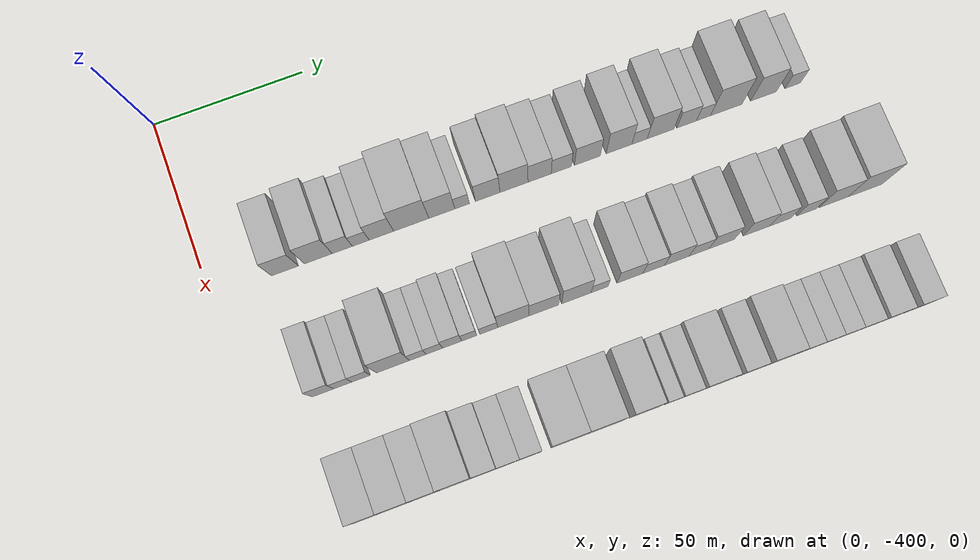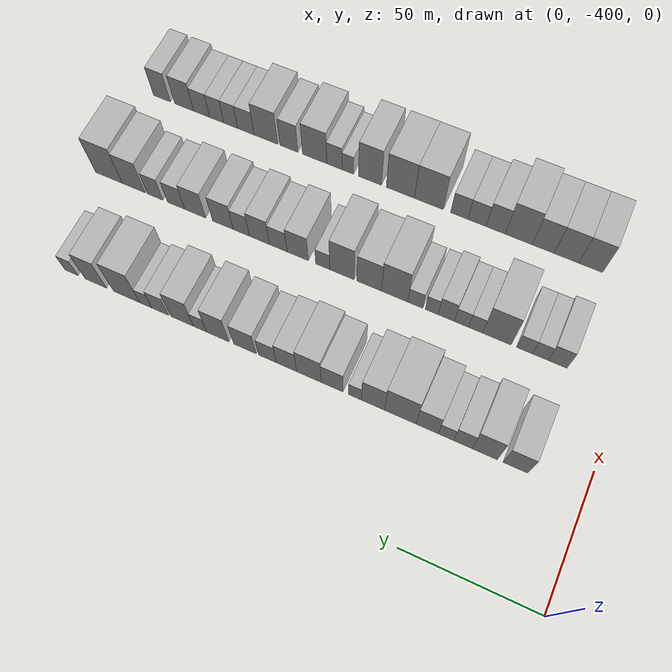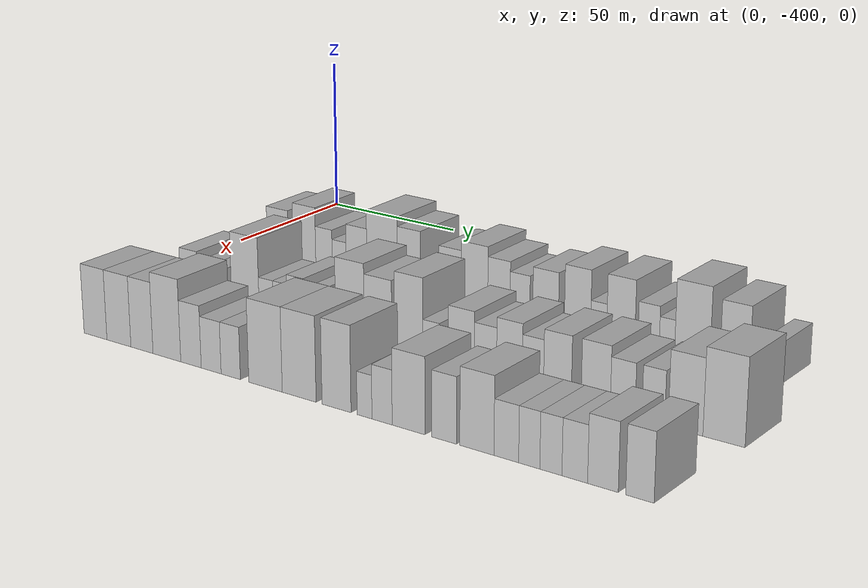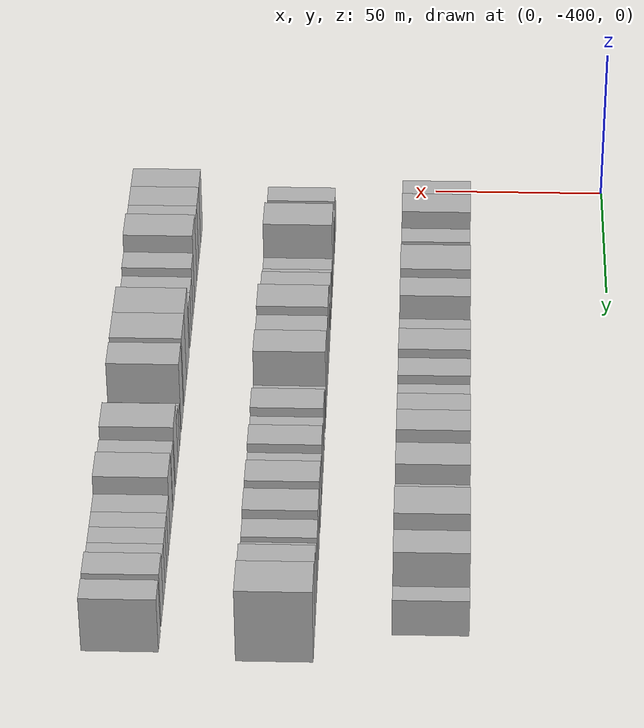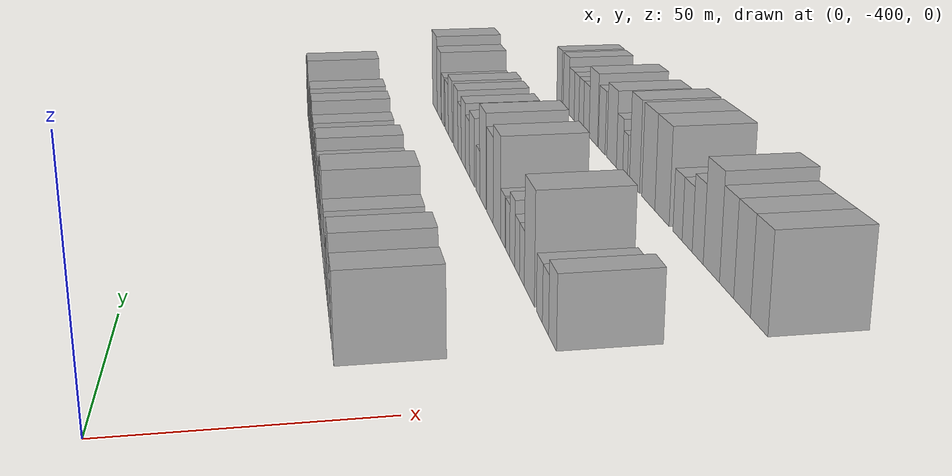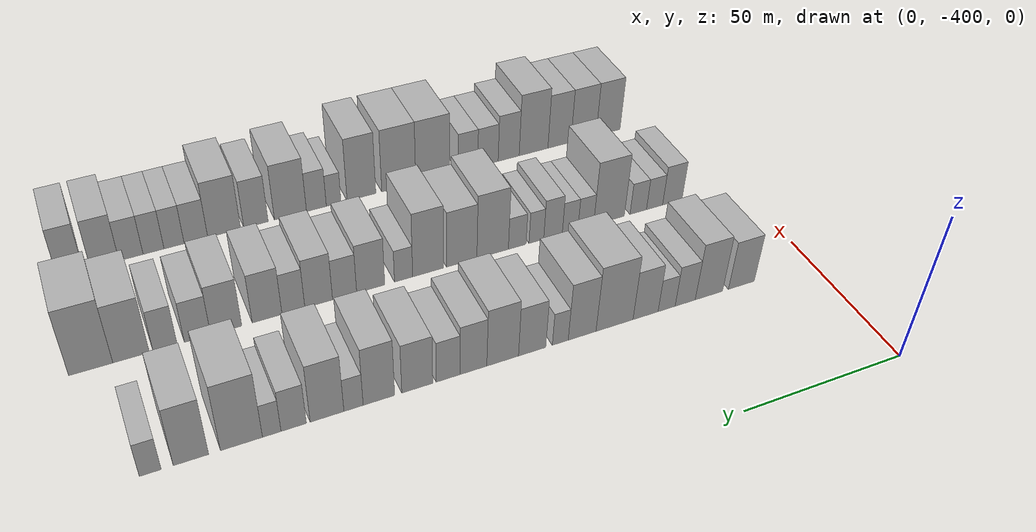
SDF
<sdf version="1.6">
 <world name="default">
  <model name="building_1">
   <static>1</static>
   <pose>50.0000 -375.6060 0 0.000000 0.000000 0.000000</pose>
   <link name="link">
    <pose>0 0 9.00 0 0 0</pose>
    <collision name="collision"><geometry><box><size>20.0000 8.7881 18.0000</size></box></geometry></collision>
    <visual name="visual">
     <cast_shadows>0</cast_shadows>
     <geometry><box><size>20.0000 8.7881 18.0000</size></box></geometry>
     <material>
      <script>
       <uri>model://HANNAS_wall/materials/scripts</uri>
       <uri>model://HANNAS_wall/materials/textures</uri>
       <name>vrc/HANNAS_wall</name>
      </script>
     </material>
    </visual>
   </link>
  </model>
  <model name="building_2">
   <static>1</static>
   <pose>50.0000 -364.6403 0 0.000000 0.000000 0.000000</pose>
   <link name="link">
    <pose>0 0 10.50 0 0 0</pose>
    <collision name="collision"><geometry><box><size>20.0000 9.1432 21.0000</size></box></geometry></collision>
    <visual name="visual">
     <cast_shadows>0</cast_shadows>
     <geometry><box><size>20.0000 9.1432 21.0000</size></box></geometry>
     <material>
      <script>
       <uri>model://HANNAS_wall/materials/scripts</uri>
       <uri>model://HANNAS_wall/materials/textures</uri>
       <name>vrc/HANNAS_wall</name>
      </script>
     </material>
    </visual>
   </link>
  </model>
  <model name="building_3">
   <static>1</static>
   <pose>50.0000 -356.7559 0 0.000000 0.000000 0.000000</pose>
   <link name="link">
    <pose>0 0 7.50 0 0 0</pose>
    <collision name="collision"><geometry><box><size>20.0000 6.6256 15.0000</size></box></geometry></collision>
    <visual name="visual">
     <cast_shadows>0</cast_shadows>
     <geometry><box><size>20.0000 6.6256 15.0000</size></box></geometry>
     <material>
      <script>
       <uri>model://HANNAS_wall/materials/scripts</uri>
       <uri>model://HANNAS_wall/materials/textures</uri>
       <name>vrc/HANNAS_wall</name>
      </script>
     </material>
    </visual>
   </link>
  </model>
  <model name="building_4">
   <static>1</static>
   <pose>50.0000 -350.6693 0 0.000000 0.000000 0.000000</pose>
   <link name="link">
    <pose>0 0 6.00 0 0 0</pose>
    <collision name="collision"><geometry><box><size>20.0000 5.5477 12.0000</size></box></geometry></collision>
    <visual name="visual">
     <cast_shadows>0</cast_shadows>
     <geometry><box><size>20.0000 5.5477 12.0000</size></box></geometry>
     <material>
      <script>
       <uri>model://HANNAS_wall/materials/scripts</uri>
       <uri>model://HANNAS_wall/materials/textures</uri>
       <name>vrc/HANNAS_wall</name>
      </script>
     </material>
    </visual>
   </link>
  </model>
  <model name="building_5">
   <static>1</static>
   <pose>50.0000 -343.8528 0 0.000000 0.000000 0.000000</pose>
   <link name="link">
    <pose>0 0 9.00 0 0 0</pose>
    <collision name="collision"><geometry><box><size>20.0000 8.0853 18.0000</size></box></geometry></collision>
    <visual name="visual">
     <cast_shadows>0</cast_shadows>
     <geometry><box><size>20.0000 8.0853 18.0000</size></box></geometry>
     <material>
      <script>
       <uri>model://HANNAS_wall/materials/scripts</uri>
       <uri>model://HANNAS_wall/materials/textures</uri>
       <name>vrc/HANNAS_wall</name>
      </script>
     </material>
    </visual>
   </link>
  </model>
  <model name="building_6">
   <static>1</static>
   <pose>50.0000 -333.9460 0 0.000000 0.000000 0.000000</pose>
   <link name="link">
    <pose>0 0 12.00 0 0 0</pose>
    <collision name="collision"><geometry><box><size>20.0000 11.7281 24.0000</size></box></geometry></collision>
    <visual name="visual">
     <cast_shadows>0</cast_shadows>
     <geometry><box><size>20.0000 11.7281 24.0000</size></box></geometry>
     <material>
      <script>
       <uri>model://HANNAS_wall/materials/scripts</uri>
       <uri>model://HANNAS_wall/materials/textures</uri>
       <name>vrc/HANNAS_wall</name>
      </script>
     </material>
    </visual>
   </link>
  </model>
  <model name="building_7">
   <static>1</static>
   <pose>50.0000 -323.7625 0 0.000000 0.000000 0.000000</pose>
   <link name="link">
    <pose>0 0 10.50 0 0 0</pose>
    <collision name="collision"><geometry><box><size>20.0000 8.6390 21.0000</size></box></geometry></collision>
    <visual name="visual">
     <cast_shadows>0</cast_shadows>
     <geometry><box><size>20.0000 8.6390 21.0000</size></box></geometry>
     <material>
      <script>
       <uri>model://HANNAS_wall/materials/scripts</uri>
       <uri>model://HANNAS_wall/materials/textures</uri>
       <name>vrc/HANNAS_wall</name>
      </script>
     </material>
    </visual>
   </link>
  </model>
  <model name="building_8">
   <static>1</static>
   <pose>50.0000 -317.0072 0 0.000000 0.000000 0.000000</pose>
   <link name="link">
    <pose>0 0 6.00 0 0 0</pose>
    <collision name="collision"><geometry><box><size>20.0000 4.8715 12.0000</size></box></geometry></collision>
    <visual name="visual">
     <cast_shadows>0</cast_shadows>
     <geometry><box><size>20.0000 4.8715 12.0000</size></box></geometry>
     <material>
      <script>
       <uri>model://HANNAS_wall/materials/scripts</uri>
       <uri>model://HANNAS_wall/materials/textures</uri>
       <name>vrc/HANNAS_wall</name>
      </script>
     </material>
    </visual>
   </link>
  </model>
  <model name="building_9">
   <static>1</static>
   <pose>50.0000 -308.4495 0 0.000000 0.000000 0.000000</pose>
   <link name="link">
    <pose>0 0 9.00 0 0 0</pose>
    <collision name="collision"><geometry><box><size>20.0000 8.2440 18.0000</size></box></geometry></collision>
    <visual name="visual">
     <cast_shadows>0</cast_shadows>
     <geometry><box><size>20.0000 8.2440 18.0000</size></box></geometry>
     <material>
      <script>
       <uri>model://HANNAS_wall/materials/scripts</uri>
       <uri>model://HANNAS_wall/materials/textures</uri>
       <name>vrc/HANNAS_wall</name>
      </script>
     </material>
    </visual>
   </link>
  </model>
  <model name="building_10">
   <static>1</static>
   <pose>50.0000 -299.6139 0 0.000000 0.000000 0.000000</pose>
   <link name="link">
    <pose>0 0 10.50 0 0 0</pose>
    <collision name="collision"><geometry><box><size>20.0000 9.4271 21.0000</size></box></geometry></collision>
    <visual name="visual">
     <cast_shadows>0</cast_shadows>
     <geometry><box><size>20.0000 9.4271 21.0000</size></box></geometry>
     <material>
      <script>
       <uri>model://HANNAS_wall/materials/scripts</uri>
       <uri>model://HANNAS_wall/materials/textures</uri>
       <name>vrc/HANNAS_wall</name>
      </script>
     </material>
    </visual>
   </link>
  </model>
  <model name="building_11">
   <static>1</static>
   <pose>50.0000 -290.9620 0 0.000000 0.000000 0.000000</pose>
   <link name="link">
    <pose>0 0 9.00 0 0 0</pose>
    <collision name="collision"><geometry><box><size>20.0000 7.8766 18.0000</size></box></geometry></collision>
    <visual name="visual">
     <cast_shadows>0</cast_shadows>
     <geometry><box><size>20.0000 7.8766 18.0000</size></box></geometry>
     <material>
      <script>
       <uri>model://HANNAS_wall/materials/scripts</uri>
       <uri>model://HANNAS_wall/materials/textures</uri>
       <name>vrc/HANNAS_wall</name>
      </script>
     </material>
    </visual>
   </link>
  </model>
  <model name="building_12">
   <static>1</static>
   <pose>50.0000 -283.6015 0 0.000000 0.000000 0.000000</pose>
   <link name="link">
    <pose>0 0 7.50 0 0 0</pose>
    <collision name="collision"><geometry><box><size>20.0000 6.8444 15.0000</size></box></geometry></collision>
    <visual name="visual">
     <cast_shadows>0</cast_shadows>
     <geometry><box><size>20.0000 6.8444 15.0000</size></box></geometry>
     <material>
      <script>
       <uri>model://HANNAS_wall/materials/scripts</uri>
       <uri>model://HANNAS_wall/materials/textures</uri>
       <name>vrc/HANNAS_wall</name>
      </script>
     </material>
    </visual>
   </link>
  </model>
  <model name="building_13">
   <static>1</static>
   <pose>50.0000 -274.7930 0 0.000000 0.000000 0.000000</pose>
   <link name="link">
    <pose>0 0 9.00 0 0 0</pose>
    <collision name="collision"><geometry><box><size>20.0000 8.7725 18.0000</size></box></geometry></collision>
    <visual name="visual">
     <cast_shadows>0</cast_shadows>
     <geometry><box><size>20.0000 8.7725 18.0000</size></box></geometry>
     <material>
      <script>
       <uri>model://HANNAS_wall/materials/scripts</uri>
       <uri>model://HANNAS_wall/materials/textures</uri>
       <name>vrc/HANNAS_wall</name>
      </script>
     </material>
    </visual>
   </link>
  </model>
  <model name="building_14">
   <static>1</static>
   <pose>50.0000 -264.0274 0 0.000000 0.000000 0.000000</pose>
   <link name="link">
    <pose>0 0 10.50 0 0 0</pose>
    <collision name="collision"><geometry><box><size>20.0000 8.7588 21.0000</size></box></geometry></collision>
    <visual name="visual">
     <cast_shadows>0</cast_shadows>
     <geometry><box><size>20.0000 8.7588 21.0000</size></box></geometry>
     <material>
      <script>
       <uri>model://HANNAS_wall/materials/scripts</uri>
       <uri>model://HANNAS_wall/materials/textures</uri>
       <name>vrc/HANNAS_wall</name>
      </script>
     </material>
    </visual>
   </link>
  </model>
  <model name="building_15">
   <static>1</static>
   <pose>50.0000 -257.0057 0 0.000000 0.000000 0.000000</pose>
   <link name="link">
    <pose>0 0 6.00 0 0 0</pose>
    <collision name="collision"><geometry><box><size>20.0000 5.2845 12.0000</size></box></geometry></collision>
    <visual name="visual">
     <cast_shadows>0</cast_shadows>
     <geometry><box><size>20.0000 5.2845 12.0000</size></box></geometry>
     <material>
      <script>
       <uri>model://HANNAS_wall/materials/scripts</uri>
       <uri>model://HANNAS_wall/materials/textures</uri>
       <name>vrc/HANNAS_wall</name>
      </script>
     </material>
    </visual>
   </link>
  </model>
  <model name="building_16">
   <static>1</static>
   <pose>50.0000 -249.7945 0 0.000000 0.000000 0.000000</pose>
   <link name="link">
    <pose>0 0 10.50 0 0 0</pose>
    <collision name="collision"><geometry><box><size>20.0000 9.1378 21.0000</size></box></geometry></collision>
    <visual name="visual">
     <cast_shadows>0</cast_shadows>
     <geometry><box><size>20.0000 9.1378 21.0000</size></box></geometry>
     <material>
      <script>
       <uri>model://HANNAS_wall/materials/scripts</uri>
       <uri>model://HANNAS_wall/materials/textures</uri>
       <name>vrc/HANNAS_wall</name>
      </script>
     </material>
    </visual>
   </link>
  </model>
  <model name="building_17">
   <static>1</static>
   <pose>50.0000 -240.8552 0 0.000000 0.000000 0.000000</pose>
   <link name="link">
    <pose>0 0 7.50 0 0 0</pose>
    <collision name="collision"><geometry><box><size>20.0000 6.7409 15.0000</size></box></geometry></collision>
    <visual name="visual">
     <cast_shadows>0</cast_shadows>
     <geometry><box><size>20.0000 6.7409 15.0000</size></box></geometry>
     <material>
      <script>
       <uri>model://HANNAS_wall/materials/scripts</uri>
       <uri>model://HANNAS_wall/materials/textures</uri>
       <name>vrc/HANNAS_wall</name>
      </script>
     </material>
    </visual>
   </link>
  </model>
  <model name="building_18">
   <static>1</static>
   <pose>50.0000 -235.0517 0 0.000000 0.000000 0.000000</pose>
   <link name="link">
    <pose>0 0 6.00 0 0 0</pose>
    <collision name="collision"><geometry><box><size>20.0000 4.8660 12.0000</size></box></geometry></collision>
    <visual name="visual">
     <cast_shadows>0</cast_shadows>
     <geometry><box><size>20.0000 4.8660 12.0000</size></box></geometry>
     <material>
      <script>
       <uri>model://HANNAS_wall/materials/scripts</uri>
       <uri>model://HANNAS_wall/materials/textures</uri>
       <name>vrc/HANNAS_wall</name>
      </script>
     </material>
    </visual>
   </link>
  </model>
  <model name="building_19">
   <static>1</static>
   <pose>50.0000 -227.1657 0 0.000000 0.000000 0.000000</pose>
   <link name="link">
    <pose>0 0 12.00 0 0 0</pose>
    <collision name="collision"><geometry><box><size>20.0000 10.9060 24.0000</size></box></geometry></collision>
    <visual name="visual">
     <cast_shadows>0</cast_shadows>
     <geometry><box><size>20.0000 10.9060 24.0000</size></box></geometry>
     <material>
      <script>
       <uri>model://HANNAS_wall/materials/scripts</uri>
       <uri>model://HANNAS_wall/materials/textures</uri>
       <name>vrc/HANNAS_wall</name>
      </script>
     </material>
    </visual>
   </link>
  </model>
  <model name="building_20">
   <static>1</static>
   <pose>50.0000 -214.2482 0 0.000000 0.000000 0.000000</pose>
   <link name="link">
    <pose>0 0 10.50 0 0 0</pose>
    <collision name="collision"><geometry><box><size>20.0000 8.9290 21.0000</size></box></geometry></collision>
    <visual name="visual">
     <cast_shadows>0</cast_shadows>
     <geometry><box><size>20.0000 8.9290 21.0000</size></box></geometry>
     <material>
      <script>
       <uri>model://HANNAS_wall/materials/scripts</uri>
       <uri>model://HANNAS_wall/materials/textures</uri>
       <name>vrc/HANNAS_wall</name>
      </script>
     </material>
    </visual>
   </link>
  </model>
  <model name="building_21">
   <static>1</static>
   <pose>50.0000 -204.0653 0 0.000000 0.000000 0.000000</pose>
   <link name="link">
    <pose>0 0 6.00 0 0 0</pose>
    <collision name="collision"><geometry><box><size>20.0000 5.4369 12.0000</size></box></geometry></collision>
    <visual name="visual">
     <cast_shadows>0</cast_shadows>
     <geometry><box><size>20.0000 5.4369 12.0000</size></box></geometry>
     <material>
      <script>
       <uri>model://HANNAS_wall/materials/scripts</uri>
       <uri>model://HANNAS_wall/materials/textures</uri>
       <name>vrc/HANNAS_wall</name>
      </script>
     </material>
    </visual>
   </link>
  </model>
  <model name="building_90">
   <static>1</static>
   <pose>90.0000 -376.4866 0 0.000000 0.000000 0.000000</pose>
   <link name="link">
    <pose>0 0 7.50 0 0 0</pose>
    <collision name="collision"><geometry><box><size>20.0000 7.0268 15.0000</size></box></geometry></collision>
    <visual name="visual">
     <cast_shadows>0</cast_shadows>
     <geometry><box><size>20.0000 7.0268 15.0000</size></box></geometry>
     <material>
      <script>
       <uri>model://HANNAS_wall/materials/scripts</uri>
       <uri>model://HANNAS_wall/materials/textures</uri>
       <name>vrc/HANNAS_wall</name>
      </script>
     </material>
    </visual>
   </link>
  </model>
  <model name="building_91">
   <static>1</static>
   <pose>90.0000 -370.0887 0 0.000000 0.000000 0.000000</pose>
   <link name="link">
    <pose>0 0 6.00 0 0 0</pose>
    <collision name="collision"><geometry><box><size>20.0000 5.7691 12.0000</size></box></geometry></collision>
    <visual name="visual">
     <cast_shadows>0</cast_shadows>
     <geometry><box><size>20.0000 5.7691 12.0000</size></box></geometry>
     <material>
      <script>
       <uri>model://HANNAS_wall/materials/scripts</uri>
       <uri>model://HANNAS_wall/materials/textures</uri>
       <name>vrc/HANNAS_wall</name>
      </script>
     </material>
    </visual>
   </link>
  </model>
  <model name="building_92">
   <static>1</static>
   <pose>90.0000 -364.2762 0 0.000000 0.000000 0.000000</pose>
   <link name="link">
    <pose>0 0 6.00 0 0 0</pose>
    <collision name="collision"><geometry><box><size>20.0000 5.8560 12.0000</size></box></geometry></collision>
    <visual name="visual">
     <cast_shadows>0</cast_shadows>
     <geometry><box><size>20.0000 5.8560 12.0000</size></box></geometry>
     <material>
      <script>
       <uri>model://HANNAS_wall/materials/scripts</uri>
       <uri>model://HANNAS_wall/materials/textures</uri>
       <name>vrc/HANNAS_wall</name>
      </script>
     </material>
    </visual>
   </link>
  </model>
  <model name="building_93">
   <static>1</static>
   <pose>90.0000 -353.9850 0 0.000000 0.000000 0.000000</pose>
   <link name="link">
    <pose>0 0 12.00 0 0 0</pose>
    <collision name="collision"><geometry><box><size>20.0000 10.7263 24.0000</size></box></geometry></collision>
    <visual name="visual">
     <cast_shadows>0</cast_shadows>
     <geometry><box><size>20.0000 10.7263 24.0000</size></box></geometry>
     <material>
      <script>
       <uri>model://HANNAS_wall/materials/scripts</uri>
       <uri>model://HANNAS_wall/materials/textures</uri>
       <name>vrc/HANNAS_wall</name>
      </script>
     </material>
    </visual>
   </link>
  </model>
  <model name="building_94">
   <static>1</static>
   <pose>90.0000 -345.9274 0 0.000000 0.000000 0.000000</pose>
   <link name="link">
    <pose>0 0 6.00 0 0 0</pose>
    <collision name="collision"><geometry><box><size>20.0000 5.3889 12.0000</size></box></geometry></collision>
    <visual name="visual">
     <cast_shadows>0</cast_shadows>
     <geometry><box><size>20.0000 5.3889 12.0000</size></box></geometry>
     <material>
      <script>
       <uri>model://HANNAS_wall/materials/scripts</uri>
       <uri>model://HANNAS_wall/materials/textures</uri>
       <name>vrc/HANNAS_wall</name>
      </script>
     </material>
    </visual>
   </link>
  </model>
  <model name="building_95">
   <static>1</static>
   <pose>90.0000 -340.5593 0 0.000000 0.000000 0.000000</pose>
   <link name="link">
    <pose>0 0 6.00 0 0 0</pose>
    <collision name="collision"><geometry><box><size>20.0000 5.3474 12.0000</size></box></geometry></collision>
    <visual name="visual">
     <cast_shadows>0</cast_shadows>
     <geometry><box><size>20.0000 5.3474 12.0000</size></box></geometry>
     <material>
      <script>
       <uri>model://HANNAS_wall/materials/scripts</uri>
       <uri>model://HANNAS_wall/materials/textures</uri>
       <name>vrc/HANNAS_wall</name>
      </script>
     </material>
    </visual>
   </link>
  </model>
  <model name="building_96">
   <static>1</static>
   <pose>90.0000 -334.7552 0 0.000000 0.000000 0.000000</pose>
   <link name="link">
    <pose>0 0 7.50 0 0 0</pose>
    <collision name="collision"><geometry><box><size>20.0000 6.2608 15.0000</size></box></geometry></collision>
    <visual name="visual">
     <cast_shadows>0</cast_shadows>
     <geometry><box><size>20.0000 6.2608 15.0000</size></box></geometry>
     <material>
      <script>
       <uri>model://HANNAS_wall/materials/scripts</uri>
       <uri>model://HANNAS_wall/materials/textures</uri>
       <name>vrc/HANNAS_wall</name>
      </script>
     </material>
    </visual>
   </link>
  </model>
  <model name="building_97">
   <static>1</static>
   <pose>90.0000 -329.1555 0 0.000000 0.000000 0.000000</pose>
   <link name="link">
    <pose>0 0 6.00 0 0 0</pose>
    <collision name="collision"><geometry><box><size>20.0000 4.9386 12.0000</size></box></geometry></collision>
    <visual name="visual">
     <cast_shadows>0</cast_shadows>
     <geometry><box><size>20.0000 4.9386 12.0000</size></box></geometry>
     <material>
      <script>
       <uri>model://HANNAS_wall/materials/scripts</uri>
       <uri>model://HANNAS_wall/materials/textures</uri>
       <name>vrc/HANNAS_wall</name>
      </script>
     </material>
    </visual>
   </link>
  </model>
  <model name="building_98">
   <static>1</static>
   <pose>90.0000 -322.7653 0 0.000000 0.000000 0.000000</pose>
   <link name="link">
    <pose>0 0 6.00 0 0 0</pose>
    <collision name="collision"><geometry><box><size>20.0000 5.8417 12.0000</size></box></geometry></collision>
    <visual name="visual">
     <cast_shadows>0</cast_shadows>
     <geometry><box><size>20.0000 5.8417 12.0000</size></box></geometry>
     <material>
      <script>
       <uri>model://HANNAS_wall/materials/scripts</uri>
       <uri>model://HANNAS_wall/materials/textures</uri>
       <name>vrc/HANNAS_wall</name>
      </script>
     </material>
    </visual>
   </link>
  </model>
  <model name="building_99">
   <static>1</static>
   <pose>90.0000 -314.6958 0 0.000000 0.000000 0.000000</pose>
   <link name="link">
    <pose>0 0 12.00 0 0 0</pose>
    <collision name="collision"><geometry><box><size>20.0000 10.2972 24.0000</size></box></geometry></collision>
    <visual name="visual">
     <cast_shadows>0</cast_shadows>
     <geometry><box><size>20.0000 10.2972 24.0000</size></box></geometry>
     <material>
      <script>
       <uri>model://HANNAS_wall/materials/scripts</uri>
       <uri>model://HANNAS_wall/materials/textures</uri>
       <name>vrc/HANNAS_wall</name>
      </script>
     </material>
    </visual>
   </link>
  </model>
  <model name="building_100">
   <static>1</static>
   <pose>90.0000 -304.6799 0 0.000000 0.000000 0.000000</pose>
   <link name="link">
    <pose>0 0 10.50 0 0 0</pose>
    <collision name="collision"><geometry><box><size>20.0000 9.7347 21.0000</size></box></geometry></collision>
    <visual name="visual">
     <cast_shadows>0</cast_shadows>
     <geometry><box><size>20.0000 9.7347 21.0000</size></box></geometry>
     <material>
      <script>
       <uri>model://HANNAS_wall/materials/scripts</uri>
       <uri>model://HANNAS_wall/materials/textures</uri>
       <name>vrc/HANNAS_wall</name>
      </script>
     </material>
    </visual>
   </link>
  </model>
  <model name="building_101">
   <static>1</static>
   <pose>90.0000 -293.9593 0 0.000000 0.000000 0.000000</pose>
   <link name="link">
    <pose>0 0 12.00 0 0 0</pose>
    <collision name="collision"><geometry><box><size>20.0000 9.7065 24.0000</size></box></geometry></collision>
    <visual name="visual">
     <cast_shadows>0</cast_shadows>
     <geometry><box><size>20.0000 9.7065 24.0000</size></box></geometry>
     <material>
      <script>
       <uri>model://HANNAS_wall/materials/scripts</uri>
       <uri>model://HANNAS_wall/materials/textures</uri>
       <name>vrc/HANNAS_wall</name>
      </script>
     </material>
    </visual>
   </link>
  </model>
  <model name="building_102">
   <static>1</static>
   <pose>90.0000 -286.2697 0 0.000000 0.000000 0.000000</pose>
   <link name="link">
    <pose>0 0 6.00 0 0 0</pose>
    <collision name="collision"><geometry><box><size>20.0000 5.6726 12.0000</size></box></geometry></collision>
    <visual name="visual">
     <cast_shadows>0</cast_shadows>
     <geometry><box><size>20.0000 5.6726 12.0000</size></box></geometry>
     <material>
      <script>
       <uri>model://HANNAS_wall/materials/scripts</uri>
       <uri>model://HANNAS_wall/materials/textures</uri>
       <name>vrc/HANNAS_wall</name>
      </script>
     </material>
    </visual>
   </link>
  </model>
  <model name="building_103">
   <static>1</static>
   <pose>90.0000 -276.1314 0 0.000000 0.000000 0.000000</pose>
   <link name="link">
    <pose>0 0 9.00 0 0 0</pose>
    <collision name="collision"><geometry><box><size>20.0000 8.6039 18.0000</size></box></geometry></collision>
    <visual name="visual">
     <cast_shadows>0</cast_shadows>
     <geometry><box><size>20.0000 8.6039 18.0000</size></box></geometry>
     <material>
      <script>
       <uri>model://HANNAS_wall/materials/scripts</uri>
       <uri>model://HANNAS_wall/materials/textures</uri>
       <name>vrc/HANNAS_wall</name>
      </script>
     </material>
    </visual>
   </link>
  </model>
  <model name="building_104">
   <static>1</static>
   <pose>90.0000 -268.1952 0 0.000000 0.000000 0.000000</pose>
   <link name="link">
    <pose>0 0 7.50 0 0 0</pose>
    <collision name="collision"><geometry><box><size>20.0000 7.2685 15.0000</size></box></geometry></collision>
    <visual name="visual">
     <cast_shadows>0</cast_shadows>
     <geometry><box><size>20.0000 7.2685 15.0000</size></box></geometry>
     <material>
      <script>
       <uri>model://HANNAS_wall/materials/scripts</uri>
       <uri>model://HANNAS_wall/materials/textures</uri>
       <name>vrc/HANNAS_wall</name>
      </script>
     </material>
    </visual>
   </link>
  </model>
  <model name="building_105">
   <static>1</static>
   <pose>90.0000 -260.4271 0 0.000000 0.000000 0.000000</pose>
   <link name="link">
    <pose>0 0 9.00 0 0 0</pose>
    <collision name="collision"><geometry><box><size>20.0000 8.2677 18.0000</size></box></geometry></collision>
    <visual name="visual">
     <cast_shadows>0</cast_shadows>
     <geometry><box><size>20.0000 8.2677 18.0000</size></box></geometry>
     <material>
      <script>
       <uri>model://HANNAS_wall/materials/scripts</uri>
       <uri>model://HANNAS_wall/materials/textures</uri>
       <name>vrc/HANNAS_wall</name>
      </script>
     </material>
    </visual>
   </link>
  </model>
  <model name="building_106">
   <static>1</static>
   <pose>90.0000 -252.9322 0 0.000000 0.000000 0.000000</pose>
   <link name="link">
    <pose>0 0 7.50 0 0 0</pose>
    <collision name="collision"><geometry><box><size>20.0000 6.7220 15.0000</size></box></geometry></collision>
    <visual name="visual">
     <cast_shadows>0</cast_shadows>
     <geometry><box><size>20.0000 6.7220 15.0000</size></box></geometry>
     <material>
      <script>
       <uri>model://HANNAS_wall/materials/scripts</uri>
       <uri>model://HANNAS_wall/materials/textures</uri>
       <name>vrc/HANNAS_wall</name>
      </script>
     </material>
    </visual>
   </link>
  </model>
  <model name="building_107">
   <static>1</static>
   <pose>90.0000 -245.2577 0 0.000000 0.000000 0.000000</pose>
   <link name="link">
    <pose>0 0 9.00 0 0 0</pose>
    <collision name="collision"><geometry><box><size>20.0000 8.6270 18.0000</size></box></geometry></collision>
    <visual name="visual">
     <cast_shadows>0</cast_shadows>
     <geometry><box><size>20.0000 8.6270 18.0000</size></box></geometry>
     <material>
      <script>
       <uri>model://HANNAS_wall/materials/scripts</uri>
       <uri>model://HANNAS_wall/materials/textures</uri>
       <name>vrc/HANNAS_wall</name>
      </script>
     </material>
    </visual>
   </link>
  </model>
  <model name="building_108">
   <static>1</static>
   <pose>90.0000 -233.5335 0 0.000000 0.000000 0.000000</pose>
   <link name="link">
    <pose>0 0 9.00 0 0 0</pose>
    <collision name="collision"><geometry><box><size>20.0000 8.8213 18.0000</size></box></geometry></collision>
    <visual name="visual">
     <cast_shadows>0</cast_shadows>
     <geometry><box><size>20.0000 8.8213 18.0000</size></box></geometry>
     <material>
      <script>
       <uri>model://HANNAS_wall/materials/scripts</uri>
       <uri>model://HANNAS_wall/materials/textures</uri>
       <name>vrc/HANNAS_wall</name>
      </script>
     </material>
    </visual>
   </link>
  </model>
  <model name="building_109">
   <static>1</static>
   <pose>90.0000 -225.4375 0 0.000000 0.000000 0.000000</pose>
   <link name="link">
    <pose>0 0 7.50 0 0 0</pose>
    <collision name="collision"><geometry><box><size>20.0000 7.3708 15.0000</size></box></geometry></collision>
    <visual name="visual">
     <cast_shadows>0</cast_shadows>
     <geometry><box><size>20.0000 7.3708 15.0000</size></box></geometry>
     <material>
      <script>
       <uri>model://HANNAS_wall/materials/scripts</uri>
       <uri>model://HANNAS_wall/materials/textures</uri>
       <name>vrc/HANNAS_wall</name>
      </script>
     </material>
    </visual>
   </link>
  </model>
  <model name="building_110">
   <static>1</static>
   <pose>90.0000 -216.4301 0 0.000000 0.000000 0.000000</pose>
   <link name="link">
    <pose>0 0 7.50 0 0 0</pose>
    <collision name="collision"><geometry><box><size>20.0000 6.6440 15.0000</size></box></geometry></collision>
    <visual name="visual">
     <cast_shadows>0</cast_shadows>
     <geometry><box><size>20.0000 6.6440 15.0000</size></box></geometry>
     <material>
      <script>
       <uri>model://HANNAS_wall/materials/scripts</uri>
       <uri>model://HANNAS_wall/materials/textures</uri>
       <name>vrc/HANNAS_wall</name>
      </script>
     </material>
    </visual>
   </link>
  </model>
  <model name="building_111">
   <static>1</static>
   <pose>90.0000 -207.1613 0 0.000000 0.000000 0.000000</pose>
   <link name="link">
    <pose>0 0 10.50 0 0 0</pose>
    <collision name="collision"><geometry><box><size>20.0000 9.8936 21.0000</size></box></geometry></collision>
    <visual name="visual">
     <cast_shadows>0</cast_shadows>
     <geometry><box><size>20.0000 9.8936 21.0000</size></box></geometry>
     <material>
      <script>
       <uri>model://HANNAS_wall/materials/scripts</uri>
       <uri>model://HANNAS_wall/materials/textures</uri>
       <name>vrc/HANNAS_wall</name>
      </script>
     </material>
    </visual>
   </link>
  </model>
  <model name="building_112">
   <static>1</static>
   <pose>90.0000 -196.3519 0 0.000000 0.000000 0.000000</pose>
   <link name="link">
    <pose>0 0 12.00 0 0 0</pose>
    <collision name="collision"><geometry><box><size>20.0000 11.7252 24.0000</size></box></geometry></collision>
    <visual name="visual">
     <cast_shadows>0</cast_shadows>
     <geometry><box><size>20.0000 11.7252 24.0000</size></box></geometry>
     <material>
      <script>
       <uri>model://HANNAS_wall/materials/scripts</uri>
       <uri>model://HANNAS_wall/materials/textures</uri>
       <name>vrc/HANNAS_wall</name>
      </script>
     </material>
    </visual>
   </link>
  </model>
  <model name="building_175">
   <static>1</static>
   <pose>130.0000 -375.4205 0 0.000000 0.000000 0.000000</pose>
   <link name="link">
    <pose>0 0 10.50 0 0 0</pose>
    <collision name="collision"><geometry><box><size>20.0000 9.1591 21.0000</size></box></geometry></collision>
    <visual name="visual">
     <cast_shadows>0</cast_shadows>
     <geometry><box><size>20.0000 9.1591 21.0000</size></box></geometry>
     <material>
      <script>
       <uri>model://HANNAS_wall/materials/scripts</uri>
       <uri>model://HANNAS_wall/materials/textures</uri>
       <name>vrc/HANNAS_wall</name>
      </script>
     </material>
    </visual>
   </link>
  </model>
  <model name="building_176">
   <static>1</static>
   <pose>130.0000 -366.1102 0 0.000000 0.000000 0.000000</pose>
   <link name="link">
    <pose>0 0 10.50 0 0 0</pose>
    <collision name="collision"><geometry><box><size>20.0000 9.4615 21.0000</size></box></geometry></collision>
    <visual name="visual">
     <cast_shadows>0</cast_shadows>
     <geometry><box><size>20.0000 9.4615 21.0000</size></box></geometry>
     <material>
      <script>
       <uri>model://HANNAS_wall/materials/scripts</uri>
       <uri>model://HANNAS_wall/materials/textures</uri>
       <name>vrc/HANNAS_wall</name>
      </script>
     </material>
    </visual>
   </link>
  </model>
  <model name="building_177">
   <static>1</static>
   <pose>130.0000 -357.1034 0 0.000000 0.000000 0.000000</pose>
   <link name="link">
    <pose>0 0 10.50 0 0 0</pose>
    <collision name="collision"><geometry><box><size>20.0000 8.5520 21.0000</size></box></geometry></collision>
    <visual name="visual">
     <cast_shadows>0</cast_shadows>
     <geometry><box><size>20.0000 8.5520 21.0000</size></box></geometry>
     <material>
      <script>
       <uri>model://HANNAS_wall/materials/scripts</uri>
       <uri>model://HANNAS_wall/materials/textures</uri>
       <name>vrc/HANNAS_wall</name>
      </script>
     </material>
    </visual>
   </link>
  </model>
  <model name="building_178">
   <static>1</static>
   <pose>130.0000 -347.5625 0 0.000000 0.000000 0.000000</pose>
   <link name="link">
    <pose>0 0 12.00 0 0 0</pose>
    <collision name="collision"><geometry><box><size>20.0000 10.5299 24.0000</size></box></geometry></collision>
    <visual name="visual">
     <cast_shadows>0</cast_shadows>
     <geometry><box><size>20.0000 10.5299 24.0000</size></box></geometry>
     <material>
      <script>
       <uri>model://HANNAS_wall/materials/scripts</uri>
       <uri>model://HANNAS_wall/materials/textures</uri>
       <name>vrc/HANNAS_wall</name>
      </script>
     </material>
    </visual>
   </link>
  </model>
  <model name="building_179">
   <static>1</static>
   <pose>130.0000 -338.4966 0 0.000000 0.000000 0.000000</pose>
   <link name="link">
    <pose>0 0 9.00 0 0 0</pose>
    <collision name="collision"><geometry><box><size>20.0000 7.6021 18.0000</size></box></geometry></collision>
    <visual name="visual">
     <cast_shadows>0</cast_shadows>
     <geometry><box><size>20.0000 7.6021 18.0000</size></box></geometry>
     <material>
      <script>
       <uri>model://HANNAS_wall/materials/scripts</uri>
       <uri>model://HANNAS_wall/materials/textures</uri>
       <name>vrc/HANNAS_wall</name>
      </script>
     </material>
    </visual>
   </link>
  </model>
  <model name="building_180">
   <static>1</static>
   <pose>130.0000 -331.0554 0 0.000000 0.000000 0.000000</pose>
   <link name="link">
    <pose>0 0 7.50 0 0 0</pose>
    <collision name="collision"><geometry><box><size>20.0000 7.2802 15.0000</size></box></geometry></collision>
    <visual name="visual">
     <cast_shadows>0</cast_shadows>
     <geometry><box><size>20.0000 7.2802 15.0000</size></box></geometry>
     <material>
      <script>
       <uri>model://HANNAS_wall/materials/scripts</uri>
       <uri>model://HANNAS_wall/materials/textures</uri>
       <name>vrc/HANNAS_wall</name>
      </script>
     </material>
    </visual>
   </link>
  </model>
  <model name="building_181">
   <static>1</static>
   <pose>130.0000 -323.9469 0 0.000000 0.000000 0.000000</pose>
   <link name="link">
    <pose>0 0 7.50 0 0 0</pose>
    <collision name="collision"><geometry><box><size>20.0000 6.9368 15.0000</size></box></geometry></collision>
    <visual name="visual">
     <cast_shadows>0</cast_shadows>
     <geometry><box><size>20.0000 6.9368 15.0000</size></box></geometry>
     <material>
      <script>
       <uri>model://HANNAS_wall/materials/scripts</uri>
       <uri>model://HANNAS_wall/materials/textures</uri>
       <name>vrc/HANNAS_wall</name>
      </script>
     </material>
    </visual>
   </link>
  </model>
  <model name="building_182">
   <static>1</static>
   <pose>130.0000 -311.6158 0 0.000000 0.000000 0.000000</pose>
   <link name="link">
    <pose>0 0 12.00 0 0 0</pose>
    <collision name="collision"><geometry><box><size>20.0000 11.7256 24.0000</size></box></geometry></collision>
    <visual name="visual">
     <cast_shadows>0</cast_shadows>
     <geometry><box><size>20.0000 11.7256 24.0000</size></box></geometry>
     <material>
      <script>
       <uri>model://HANNAS_wall/materials/scripts</uri>
       <uri>model://HANNAS_wall/materials/textures</uri>
       <name>vrc/HANNAS_wall</name>
      </script>
     </material>
    </visual>
   </link>
  </model>
  <model name="building_183">
   <static>1</static>
   <pose>130.0000 -299.9737 0 0.000000 0.000000 0.000000</pose>
   <link name="link">
    <pose>0 0 12.00 0 0 0</pose>
    <collision name="collision"><geometry><box><size>20.0000 11.5585 24.0000</size></box></geometry></collision>
    <visual name="visual">
     <cast_shadows>0</cast_shadows>
     <geometry><box><size>20.0000 11.5585 24.0000</size></box></geometry>
     <material>
      <script>
       <uri>model://HANNAS_wall/materials/scripts</uri>
       <uri>model://HANNAS_wall/materials/textures</uri>
       <name>vrc/HANNAS_wall</name>
      </script>
     </material>
    </visual>
   </link>
  </model>
  <model name="building_184">
   <static>1</static>
   <pose>130.0000 -287.3935 0 0.000000 0.000000 0.000000</pose>
   <link name="link">
    <pose>0 0 12.00 0 0 0</pose>
    <collision name="collision"><geometry><box><size>20.0000 9.6021 24.0000</size></box></geometry></collision>
    <visual name="visual">
     <cast_shadows>0</cast_shadows>
     <geometry><box><size>20.0000 9.6021 24.0000</size></box></geometry>
     <material>
      <script>
       <uri>model://HANNAS_wall/materials/scripts</uri>
       <uri>model://HANNAS_wall/materials/textures</uri>
       <name>vrc/HANNAS_wall</name>
      </script>
     </material>
    </visual>
   </link>
  </model>
  <model name="building_185">
   <static>1</static>
   <pose>130.0000 -278.1843 0 0.000000 0.000000 0.000000</pose>
   <link name="link">
    <pose>0 0 6.00 0 0 0</pose>
    <collision name="collision"><geometry><box><size>20.0000 4.8162 12.0000</size></box></geometry></collision>
    <visual name="visual">
     <cast_shadows>0</cast_shadows>
     <geometry><box><size>20.0000 4.8162 12.0000</size></box></geometry>
     <material>
      <script>
       <uri>model://HANNAS_wall/materials/scripts</uri>
       <uri>model://HANNAS_wall/materials/textures</uri>
       <name>vrc/HANNAS_wall</name>
      </script>
     </material>
    </visual>
   </link>
  </model>
  <model name="building_186">
   <static>1</static>
   <pose>130.0000 -272.5391 0 0.000000 0.000000 0.000000</pose>
   <link name="link">
    <pose>0 0 7.50 0 0 0</pose>
    <collision name="collision"><geometry><box><size>20.0000 6.4742 15.0000</size></box></geometry></collision>
    <visual name="visual">
     <cast_shadows>0</cast_shadows>
     <geometry><box><size>20.0000 6.4742 15.0000</size></box></geometry>
     <material>
      <script>
       <uri>model://HANNAS_wall/materials/scripts</uri>
       <uri>model://HANNAS_wall/materials/textures</uri>
       <name>vrc/HANNAS_wall</name>
      </script>
     </material>
    </visual>
   </link>
  </model>
  <model name="building_187">
   <static>1</static>
   <pose>130.0000 -264.1479 0 0.000000 0.000000 0.000000</pose>
   <link name="link">
    <pose>0 0 10.50 0 0 0</pose>
    <collision name="collision"><geometry><box><size>20.0000 10.3081 21.0000</size></box></geometry></collision>
    <visual name="visual">
     <cast_shadows>0</cast_shadows>
     <geometry><box><size>20.0000 10.3081 21.0000</size></box></geometry>
     <material>
      <script>
       <uri>model://HANNAS_wall/materials/scripts</uri>
       <uri>model://HANNAS_wall/materials/textures</uri>
       <name>vrc/HANNAS_wall</name>
      </script>
     </material>
    </visual>
   </link>
  </model>
  <model name="building_188">
   <static>1</static>
   <pose>130.0000 -253.1530 0 0.000000 0.000000 0.000000</pose>
   <link name="link">
    <pose>0 0 9.00 0 0 0</pose>
    <collision name="collision"><geometry><box><size>20.0000 7.6817 18.0000</size></box></geometry></collision>
    <visual name="visual">
     <cast_shadows>0</cast_shadows>
     <geometry><box><size>20.0000 7.6817 18.0000</size></box></geometry>
     <material>
      <script>
       <uri>model://HANNAS_wall/materials/scripts</uri>
       <uri>model://HANNAS_wall/materials/textures</uri>
       <name>vrc/HANNAS_wall</name>
      </script>
     </material>
    </visual>
   </link>
  </model>
  <model name="building_189">
   <static>1</static>
   <pose>130.0000 -243.2009 0 0.000000 0.000000 0.000000</pose>
   <link name="link">
    <pose>0 0 10.50 0 0 0</pose>
    <collision name="collision"><geometry><box><size>20.0000 10.2226 21.0000</size></box></geometry></collision>
    <visual name="visual">
     <cast_shadows>0</cast_shadows>
     <geometry><box><size>20.0000 10.2226 21.0000</size></box></geometry>
     <material>
      <script>
       <uri>model://HANNAS_wall/materials/scripts</uri>
       <uri>model://HANNAS_wall/materials/textures</uri>
       <name>vrc/HANNAS_wall</name>
      </script>
     </material>
    </visual>
   </link>
  </model>
  <model name="building_190">
   <static>1</static>
   <pose>130.0000 -234.4790 0 0.000000 0.000000 0.000000</pose>
   <link name="link">
    <pose>0 0 7.50 0 0 0</pose>
    <collision name="collision"><geometry><box><size>20.0000 7.2211 15.0000</size></box></geometry></collision>
    <visual name="visual">
     <cast_shadows>0</cast_shadows>
     <geometry><box><size>20.0000 7.2211 15.0000</size></box></geometry>
     <material>
      <script>
       <uri>model://HANNAS_wall/materials/scripts</uri>
       <uri>model://HANNAS_wall/materials/textures</uri>
       <name>vrc/HANNAS_wall</name>
      </script>
     </material>
    </visual>
   </link>
  </model>
  <model name="building_191">
   <static>1</static>
   <pose>130.0000 -227.8186 0 0.000000 0.000000 0.000000</pose>
   <link name="link">
    <pose>0 0 7.50 0 0 0</pose>
    <collision name="collision"><geometry><box><size>20.0000 6.0998 15.0000</size></box></geometry></collision>
    <visual name="visual">
     <cast_shadows>0</cast_shadows>
     <geometry><box><size>20.0000 6.0998 15.0000</size></box></geometry>
     <material>
      <script>
       <uri>model://HANNAS_wall/materials/scripts</uri>
       <uri>model://HANNAS_wall/materials/textures</uri>
       <name>vrc/HANNAS_wall</name>
      </script>
     </material>
    </visual>
   </link>
  </model>
  <model name="building_192">
   <static>1</static>
   <pose>130.0000 -221.6328 0 0.000000 0.000000 0.000000</pose>
   <link name="link">
    <pose>0 0 7.50 0 0 0</pose>
    <collision name="collision"><geometry><box><size>20.0000 6.2718 15.0000</size></box></geometry></collision>
    <visual name="visual">
     <cast_shadows>0</cast_shadows>
     <geometry><box><size>20.0000 6.2718 15.0000</size></box></geometry>
     <material>
      <script>
       <uri>model://HANNAS_wall/materials/scripts</uri>
       <uri>model://HANNAS_wall/materials/textures</uri>
       <name>vrc/HANNAS_wall</name>
      </script>
     </material>
    </visual>
   </link>
  </model>
  <model name="building_193">
   <static>1</static>
   <pose>130.0000 -214.9207 0 0.000000 0.000000 0.000000</pose>
   <link name="link">
    <pose>0 0 7.50 0 0 0</pose>
    <collision name="collision"><geometry><box><size>20.0000 7.1523 15.0000</size></box></geometry></collision>
    <visual name="visual">
     <cast_shadows>0</cast_shadows>
     <geometry><box><size>20.0000 7.1523 15.0000</size></box></geometry>
     <material>
      <script>
       <uri>model://HANNAS_wall/materials/scripts</uri>
       <uri>model://HANNAS_wall/materials/textures</uri>
       <name>vrc/HANNAS_wall</name>
      </script>
     </material>
    </visual>
   </link>
  </model>
  <model name="building_194">
   <static>1</static>
   <pose>130.0000 -207.1420 0 0.000000 0.000000 0.000000</pose>
   <link name="link">
    <pose>0 0 9.00 0 0 0</pose>
    <collision name="collision"><geometry><box><size>20.0000 8.4051 18.0000</size></box></geometry></collision>
    <visual name="visual">
     <cast_shadows>0</cast_shadows>
     <geometry><box><size>20.0000 8.4051 18.0000</size></box></geometry>
     <material>
      <script>
       <uri>model://HANNAS_wall/materials/scripts</uri>
       <uri>model://HANNAS_wall/materials/textures</uri>
       <name>vrc/HANNAS_wall</name>
      </script>
     </material>
    </visual>
   </link>
  </model>
  <model name="building_195">
   <static>1</static>
   <pose>130.0000 -197.1475 0 0.000000 0.000000 0.000000</pose>
   <link name="link">
    <pose>0 0 9.00 0 0 0</pose>
    <collision name="collision"><geometry><box><size>20.0000 7.5839 18.0000</size></box></geometry></collision>
    <visual name="visual">
     <cast_shadows>0</cast_shadows>
     <geometry><box><size>20.0000 7.5839 18.0000</size></box></geometry>
     <material>
      <script>
       <uri>model://HANNAS_wall/materials/scripts</uri>
       <uri>model://HANNAS_wall/materials/textures</uri>
       <name>vrc/HANNAS_wall</name>
      </script>
     </material>
    </visual>
   </link>
  </model>
 </world>
</sdf>
